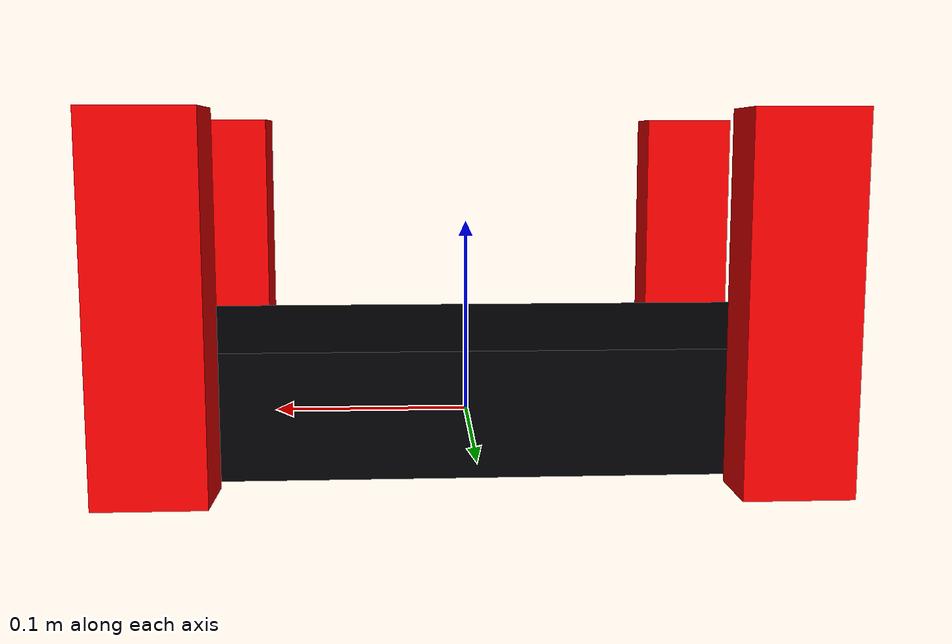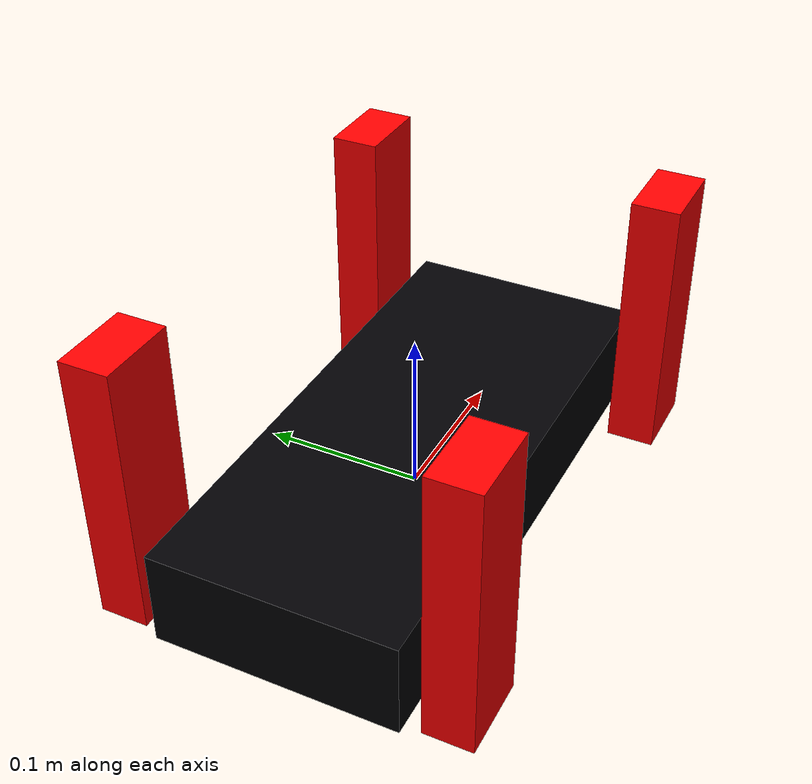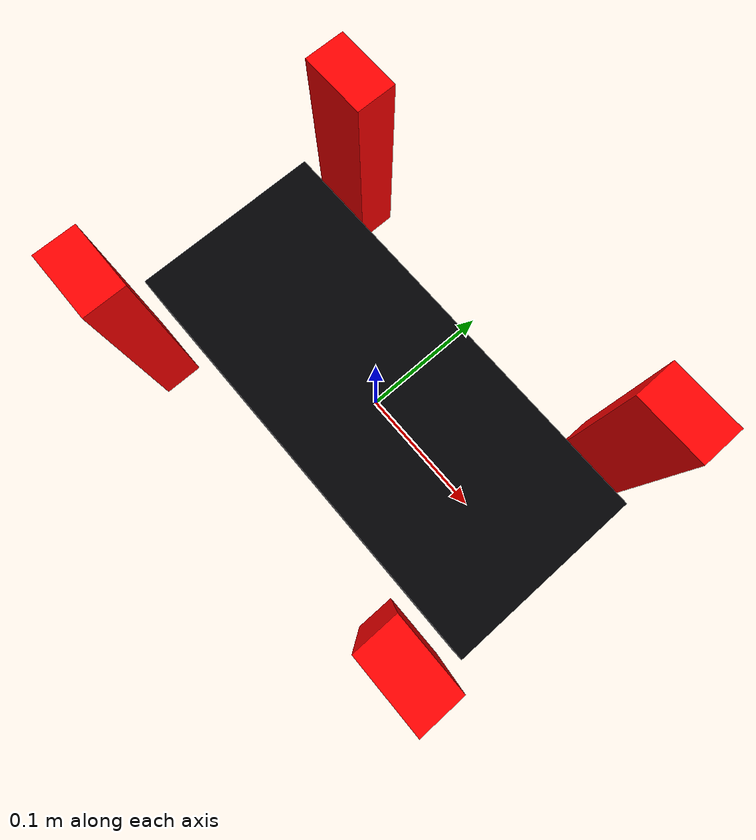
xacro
<?xml version="1.0"?>
<robot name="dtw_robot" xmlns:xacro="http://ros.org/wiki/xacro">
    <material name="gray">
        <color rgba="0.5 0.5 0.5 2.5"/>
    </material>
    <material name="red">
        <color rgba="1.0 0.0 0.0 2.0"/>
    </material>
    <material name="white">
        <color rgba="0.5 0.0 2.5 2.0"/>
    </material>

    <xacro:macro name="flipper_macro" params="parent suffix xyz">
        <joint name="${suffix}_joint" type="revolute">
            <parent link="${parent}"/>
            <child  link="${suffix}_link"/>
            <origin xyz="${xyz}" rpy="0 0 ${radians(-90)}"/>
            <limit lower="-1.5" upper="1.5" effort="0" velocity="0"/>
        </joint>
        <link name="${suffix}_link">
            <visual>
                <geometry>
                    <box size="0.03 0.05 0.17"/>
                </geometry>
                <origin xyz="0 0 0.055" rpy="0 0 0"/>
                <material name="red"/>
            </visual>
        </link>
    </xacro:macro>

    <link name="base_link"/>

    <joint name="body_joint" type="fixed">
        <parent link="base_link"/>
        <child  link="body_link"/>
        <origin xyz="0 0 0" rpy="0 0 0"/>
    </joint>

    <link name="body_link" type="fixed">
        <visual>
            <origin xyz="0 0 0.015" rpy="0 0 0"/>
            <geometry>
                <box size="0.34 0.15 0.06"/>
            </geometry>
            <material name="white"/>
        </visual>
    </link>

    <xacro:flipper_macro suffix="front_right_flipper"  parent="base_link" xyz="0.14 0.1 0.015"/>
    <xacro:flipper_macro suffix="front_left_flipper" parent="base_link" xyz="0.14 -0.1 0.015"/>
    <xacro:flipper_macro suffix="rear_right_flipper" parent="base_link" xyz="-0.14 0.1 0.015"/>
    <xacro:flipper_macro suffix="rear_left_flipper" parent="base_link" xyz="-0.14 -0.1 0.015"/>
</robot>
